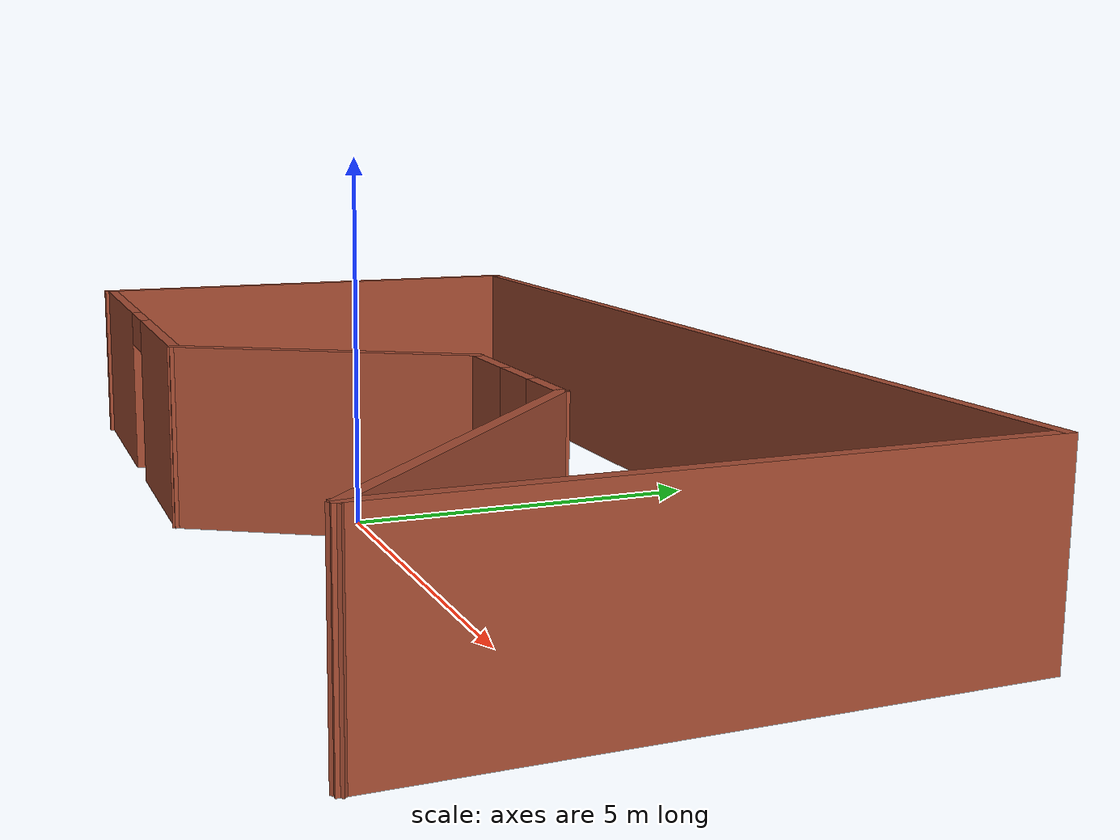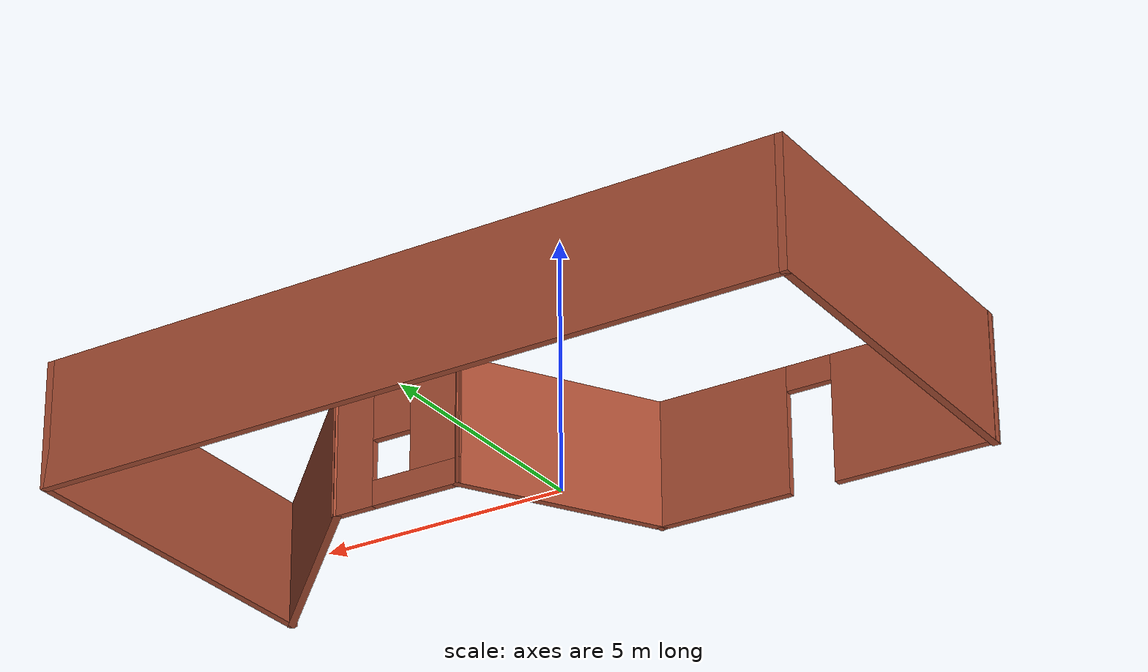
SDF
<?xml version='1.0'?>
<sdf version='1.6'>
  <model name='EscenarioPrueba1'>
    <pose frame=''>0.171662 1.27159 0 0 -0 0</pose>
    <link name='Wall_0'>
      <collision name='Wall_0_Collision'>
        <geometry>
          <box>
            <size>7.5 0.15 2.5</size>
          </box>
        </geometry>
        <pose frame=''>0 0 1.25 0 -0 0</pose>
      </collision>
      <visual name='Wall_0_Visual'>
        <pose frame=''>0 0 1.25 0 -0 0</pose>
        <geometry>
          <box>
            <size>7.5 0.15 2.5</size>
          </box>
        </geometry>
        <material>
          <script>
            <uri>file://media/materials/scripts/gazebo.material</uri>
            <name>Gazebo/Bricks</name>
          </script>
          <ambient>1 1 1 1</ambient>
        </material>
      </visual>
      <pose frame=''>-7.43741 0.015533 0 0 -0 1.5708</pose>
    </link>
    <link name='Wall_1'>
      <collision name='Wall_1_Collision'>
        <geometry>
          <box>
            <size>15 0.15 2.5</size>
          </box>
        </geometry>
        <pose frame=''>0 0 1.25 0 -0 0</pose>
      </collision>
      <visual name='Wall_1_Visual'>
        <pose frame=''>0 0 1.25 0 -0 0</pose>
        <geometry>
          <box>
            <size>15 0.15 2.5</size>
          </box>
        </geometry>
        <material>
          <script>
            <uri>file://media/materials/scripts/gazebo.material</uri>
            <name>Gazebo/Bricks</name>
          </script>
          <ambient>1 1 1 1</ambient>
        </material>
      </visual>
      <pose frame=''>-0.012411 3.69053 0 0 -0 0</pose>
    </link>
    <link name='Wall_2'>
      <collision name='Wall_2_Collision'>
        <geometry>
          <box>
            <size>7.5 0.15 2.5</size>
          </box>
        </geometry>
        <pose frame=''>0 0 1.25 0 -0 0</pose>
      </collision>
      <visual name='Wall_2_Visual'>
        <pose frame=''>0 0 1.25 0 -0 0</pose>
        <geometry>
          <box>
            <size>7.5 0.15 2.5</size>
          </box>
        </geometry>
        <material>
          <script>
            <uri>file://media/materials/scripts/gazebo.material</uri>
            <name>Gazebo/Bricks</name>
          </script>
          <ambient>1 1 1 1</ambient>
        </material>
      </visual>
      <pose frame=''>7.41259 0.015533 0 0 0 -1.5708</pose>
    </link>
    <link name='Wall_3'>
      <collision name='Wall_3_Collision'>
        <geometry>
          <box>
            <size>5.25 0.15 2.5</size>
          </box>
        </geometry>
        <pose frame=''>0 0 1.25 0 -0 0</pose>
      </collision>
      <visual name='Wall_3_Visual'>
        <pose frame=''>0 0 1.25 0 -0 0</pose>
        <geometry>
          <box>
            <size>5.25 0.15 2.5</size>
          </box>
        </geometry>
        <material>
          <script>
            <uri>file://media/materials/scripts/gazebo.material</uri>
            <name>Gazebo/Bricks</name>
          </script>
          <ambient>1 1 1 1</ambient>
        </material>
      </visual>
      <pose frame=''>5.60947 -1.85634 0 0 -0 2.35619</pose>
    </link>
    <link name='Wall_4'>
      <pose frame=''>2.50634 -0.053222 0 0 -0 3.14159</pose>
      <visual name='Wall_4_Visual_0'>
        <pose frame=''>-0.928596 0 1.25 0 -0 0</pose>
        <geometry>
          <box>
            <size>0.892808 0.15 2.5</size>
          </box>
        </geometry>
        <material>
          <script>
            <uri>file://media/materials/scripts/gazebo.material</uri>
            <name>Gazebo/Bricks</name>
          </script>
          <ambient>1 1 1 1</ambient>
        </material>
      </visual>
      <collision name='Wall_4_Collision_0'>
        <geometry>
          <box>
            <size>0.892808 0.15 2.5</size>
          </box>
        </geometry>
        <pose frame=''>-0.928596 0 1.25 0 -0 0</pose>
      </collision>
      <visual name='Wall_4_Visual_1'>
        <pose frame=''>0.446404 0 0.25 0 -0 0</pose>
        <geometry>
          <box>
            <size>1.85719 0.15 0.5</size>
          </box>
        </geometry>
        <material>
          <script>
            <uri>file://media/materials/scripts/gazebo.material</uri>
            <name>Gazebo/Bricks</name>
          </script>
          <ambient>1 1 1 1</ambient>
        </material>
      </visual>
      <collision name='Wall_4_Collision_1'>
        <geometry>
          <box>
            <size>1.85719 0.15 0.5</size>
          </box>
        </geometry>
        <pose frame=''>0.446404 0 0.25 0 -0 0</pose>
      </collision>
      <visual name='Wall_4_Visual_2'>
        <pose frame=''>0.846404 0 1.5 0 -0 0</pose>
        <geometry>
          <box>
            <size>1.05719 0.15 2</size>
          </box>
        </geometry>
        <material>
          <script>
            <uri>file://media/materials/scripts/gazebo.material</uri>
            <name>Gazebo/Bricks</name>
          </script>
          <ambient>1 1 1 1</ambient>
        </material>
      </visual>
      <collision name='Wall_4_Collision_2'>
        <geometry>
          <box>
            <size>1.05719 0.15 2</size>
          </box>
        </geometry>
        <pose frame=''>0.846404 0 1.5 0 -0 0</pose>
      </collision>
      <visual name='Wall_4_Visual_3'>
        <pose frame=''>-0.082192 0 1.9 0 -0 0</pose>
        <geometry>
          <box>
            <size>0.8 0.15 1.2</size>
          </box>
        </geometry>
        <material>
          <script>
            <uri>file://media/materials/scripts/gazebo.material</uri>
            <name>Gazebo/Bricks</name>
          </script>
          <ambient>1 1 1 1</ambient>
        </material>
      </visual>
      <collision name='Wall_4_Collision_3'>
        <geometry>
          <box>
            <size>0.8 0.15 1.2</size>
          </box>
        </geometry>
        <pose frame=''>-0.082192 0 1.9 0 -0 0</pose>
      </collision>
    </link>
    <link name='Wall_5'>
      <collision name='Wall_5_Collision'>
        <geometry>
          <box>
            <size>4.25 0.15 2.5</size>
          </box>
        </geometry>
        <pose frame=''>0 0 1.25 0 -0 0</pose>
      </collision>
      <visual name='Wall_5_Visual'>
        <pose frame=''>0 0 1.25 0 -0 0</pose>
        <geometry>
          <box>
            <size>4.25 0.15 2.5</size>
          </box>
        </geometry>
        <material>
          <script>
            <uri>file://media/materials/scripts/gazebo.material</uri>
            <name>Gazebo/Bricks</name>
          </script>
          <ambient>1 1 1 1</ambient>
        </material>
      </visual>
      <pose frame=''>0.181344 -1.82857 0 0 0 -2.0944</pose>
    </link>
    <link name='Wall_6'>
      <pose frame=''>-4.14366 -3.60393 0 0 -0 3.14159</pose>
      <visual name='Wall_6_Visual_0'>
        <pose frame=''>-2.00697 0 1.25 0 -0 0</pose>
        <geometry>
          <box>
            <size>2.73606 0.15 2.5</size>
          </box>
        </geometry>
        <material>
          <script>
            <uri>file://media/materials/scripts/gazebo.material</uri>
            <name>Gazebo/Bricks</name>
          </script>
          <ambient>1 1 1 1</ambient>
        </material>
      </visual>
      <collision name='Wall_6_Collision_0'>
        <geometry>
          <box>
            <size>2.73606 0.15 2.5</size>
          </box>
        </geometry>
        <pose frame=''>-2.00697 0 1.25 0 -0 0</pose>
      </collision>
      <visual name='Wall_6_Visual_1'>
        <pose frame=''>1.81803 0 1.25 0 -0 0</pose>
        <geometry>
          <box>
            <size>3.11394 0.15 2.5</size>
          </box>
        </geometry>
        <material>
          <script>
            <uri>file://media/materials/scripts/gazebo.material</uri>
            <name>Gazebo/Bricks</name>
          </script>
          <ambient>1 1 1 1</ambient>
        </material>
      </visual>
      <collision name='Wall_6_Collision_1'>
        <geometry>
          <box>
            <size>3.11394 0.15 2.5</size>
          </box>
        </geometry>
        <pose frame=''>1.81803 0 1.25 0 -0 0</pose>
      </collision>
      <visual name='Wall_6_Visual_2'>
        <pose frame=''>-0.188942 0 2.25 0 -0 0</pose>
        <geometry>
          <box>
            <size>0.9 0.15 0.5</size>
          </box>
        </geometry>
        <material>
          <script>
            <uri>file://media/materials/scripts/gazebo.material</uri>
            <name>Gazebo/Bricks</name>
          </script>
          <ambient>1 1 1 1</ambient>
        </material>
      </visual>
      <collision name='Wall_6_Collision_2'>
        <geometry>
          <box>
            <size>0.9 0.15 0.5</size>
          </box>
        </geometry>
        <pose frame=''>-0.188942 0 2.25 0 -0 0</pose>
      </collision>
    </link>
    <static>1</static>
  </model>
</sdf>
